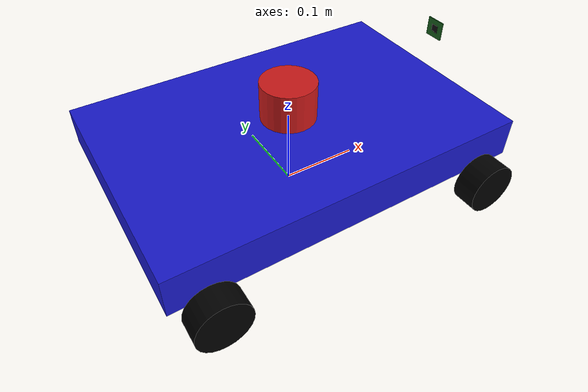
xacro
<?xml version="1.0"?>
<robot xmlns:xacro="http://www.ros.org/wiki/xacro" name="mecanum_robot">

    <!-- chassis properties -->
    <xacro:property name="chassis_length" value="0.45"/>
    <xacro:property name="chassis_width"  value="0.30"/>
    <xacro:property name="chassis_height" value="0.05"/>
    <xacro:property name="chassis_mass"   value="0.5"/>
    <xacro:property name="wheel_radius"   value="0.0325"/>
    <xacro:property name="wheel_thickness" value="0.03"/>
    <xacro:property name="wheel_mass"     value="0.1"/>
    <xacro:property name="ground_clearance" value="0.05"/>

    <xacro:property name="wheel_inset_x" value="0.045"/>
    <xacro:property name="wheel_inset_y" value="0.015"/>

    <xacro:property name="lidar_radius"     value="0.035"/>
    <xacro:property name="lidar_height"     value="0.05"/>
    <xacro:property name="lidar_mass"       value="0.2"/>
    <xacro:property name="lidar_x_offset"   value="0.0"/>

    <!-- Raspberry Pi Camera Module 2 dimensions (metres). -->
    <xacro:property name="camera_width" value="0.025"/>
    <xacro:property name="camera_height" value="0.024"/>
    <xacro:property name="camera_depth" value="0.009"/>
    <xacro:property name="camera_board_depth" value="0.0016"/>
    <xacro:property name="camera_lens_housing_depth" value="0.005"/>
    <xacro:property name="camera_lens_housing_size" value="0.010"/>
    <xacro:property name="camera_lens_radius" value="0.004"/>
    <xacro:property name="camera_lens_depth" value="0.004"/>
    <xacro:property name="camera_mass" value="0.01"/>
    <xacro:property name="camera_update_rate" value="30"/>

    <xacro:property name="wheel_pos_x" value="${(chassis_length / 2.0) - wheel_inset_x}"/>
    <xacro:property name="wheel_pos_y" value="${(chassis_width / 2.0) + wheel_inset_y}"/>
    <xacro:property name="chassis_pos_z" value="${ground_clearance + (chassis_height / 2.0)}"/>
    <xacro:property name="wheel_pos_z"   value="${wheel_radius}"/>

    <xacro:property name="lidar_update_rate"   value="10"/>
    <xacro:property name="lidar_samples"       value="360"/>
    <xacro:property name="lidar_min_angle"     value="-3.14159"/>
    <xacro:property name="lidar_max_angle"     value="3.14159"/>
    <xacro:property name="lidar_min_range"     value="0.15"/>
    <xacro:property name="lidar_max_range"     value="12.0"/>
    <xacro:property name="lidar_noise_stddev"  value="0.01"/>

    <xacro:property name="wheelbase"        value="${wheel_pos_x * 2.0}"/>
    <xacro:property name="wheel_separation" value="${wheel_pos_y * 2.0}"/>

    <!-- Sim Toggle -->
    <xacro:arg name="use_sim" default="false" />

    <xacro:macro name="inertial_box" params="mass x y z">
        <inertial>
            <origin xyz="0 0 0" rpy="0 0 0"/>
            <mass value="${mass}"/>
            <inertia ixx="${(mass/12.0) * (y*y + z*z)}" ixy="0.0" ixz="0.0"
                     iyy="${(mass/12.0) * (x*x + z*z)}" iyz="0.0"
                     izz="${(mass/12.0) * (x*x + y*y)}"/>
        </inertial>
    </xacro:macro>

    <xacro:macro name="inertial_cylinder" params="mass radius length">
        <inertial>
            <origin xyz="0 0 0" rpy="0 0 0"/>
            <mass value="${mass}"/>
            <inertia ixx="${(mass/12.0) * (3*radius*radius + length*length)}" ixy="0.0" ixz="0.0"
                     iyy="${(mass/12.0) * (3*radius*radius + length*length)}" iyz="0.0"
                     izz="${(0.5) * mass * (radius*radius)}"/>
        </inertial>
    </xacro:macro>

    <link name="base_link"/>

    <link name="chassis">
        <visual>
            <geometry>
                <box size="${chassis_length} ${chassis_width} ${chassis_height}"/>
            </geometry>
            <material name="blue"><color rgba="0.1 0.1 0.8 1.0"/></material>
        </visual>
        <collision>
            <geometry>
                <box size="${chassis_length} ${chassis_width} ${chassis_height}"/>
            </geometry>
        </collision>
        <xacro:inertial_box mass="${chassis_mass}" x="${chassis_length}" y="${chassis_width}" z="${chassis_height}"/>
    </link>

    <joint name="chassis_joint" type="fixed">
        <parent link="base_link"/>
        <child link="chassis"/>
        <origin xyz="0 0 ${chassis_pos_z}" rpy="0 0 0"/>
    </joint>

    <xacro:macro name="mecanum_wheel" params="prefix x_reflect y_reflect z_axis_reflect">
        <link name="${prefix}_wheel">
            <visual>
                <origin xyz="0 0 0" rpy="${pi/2} 0 0"/>
                <geometry>
                    <cylinder radius="${wheel_radius}" length="${wheel_thickness}"/>
                </geometry>
                <material name="black"><color rgba="0.0 0.0 0.0 1.0"/></material>
            </visual>
            <collision>
                <origin xyz="0 0 0" rpy="0 0 0"/>
                <geometry>
                    <sphere radius="${wheel_radius}"/>
                </geometry>
            </collision>
            <xacro:inertial_cylinder mass="${wheel_mass}" radius="${wheel_radius}" length="${wheel_thickness}"/>
        </link>

        <joint name="${prefix}_wheel_joint" type="continuous">
            <parent link="base_link"/>
            <child link="${prefix}_wheel"/>
            <origin xyz="${x_reflect * wheel_pos_x} ${y_reflect * wheel_pos_y} ${wheel_pos_z}" rpy="0 0 0"/>
            <axis xyz="0 1 0"/>
        </joint>

        <gazebo reference="${prefix}_wheel">
            <surface>
                <friction>
                    <ode>
                        <mu>0.0</mu>   <mu2>0.0</mu2>
                    </ode>
                </friction>
            </surface>
        </gazebo>
    </xacro:macro>

    <xacro:mecanum_wheel prefix="front_left"  x_reflect="1"  y_reflect="1"  z_axis_reflect="1" />
    <xacro:mecanum_wheel prefix="rear_left"   x_reflect="-1" y_reflect="1"  z_axis_reflect="1" />
    <xacro:mecanum_wheel prefix="front_right" x_reflect="1"  y_reflect="-1" z_axis_reflect="-1" />
    <xacro:mecanum_wheel prefix="rear_right"  x_reflect="-1" y_reflect="-1" z_axis_reflect="-1" />

    <!-- LIDAR -->
    <link name="laser_frame">
        <visual>
            <geometry>
                <cylinder radius="${lidar_radius}" length="${lidar_height}"/>
            </geometry>
            <material name="red"><color rgba="0.8 0.1 0.1 1.0"/></material>
        </visual>
        <collision>
            <geometry>
                <cylinder radius="${lidar_radius}" length="${lidar_height}"/>
            </geometry>
        </collision>
        <xacro:inertial_cylinder mass="${lidar_mass}" radius="${lidar_radius}" length="${lidar_height}"/>
    </link>

    <joint name="laser_joint" type="fixed">
        <parent link="chassis"/>
        <child link="laser_frame"/>
        <origin xyz="${lidar_x_offset} 0 ${(chassis_height/2.0) + (lidar_height/2.0)}" rpy="0 0 0"/>
    </joint>

    <!-- CAMERA: +X points forward on the chassis.  The optical frame follows
         REP 103: +Z forward, +X right, +Y down. -->
    <link name="camera_link">
        <!-- The board is centred on camera_link; +X is the viewing direction. -->
        <visual>
            <origin xyz="${-(camera_depth - camera_board_depth) / 2.0} 0 0" rpy="0 0 0"/>
            <geometry>
                <box size="${camera_board_depth} ${camera_width} ${camera_height}"/>
            </geometry>
            <material name="camera_board_green"><color rgba="0.08 0.35 0.10 1.0"/></material>
        </visual>
        <visual>
            <origin xyz="${(camera_depth - camera_lens_housing_depth) / 2.0 - camera_lens_depth} 0 0" rpy="0 0 0"/>
            <geometry>
                <box size="${camera_lens_housing_depth} ${camera_lens_housing_size} ${camera_lens_housing_size}"/>
            </geometry>
            <material name="camera_lens_housing_black"><color rgba="0.04 0.04 0.04 1.0"/></material>
        </visual>
        <visual>
            <origin xyz="${(camera_depth - camera_lens_depth) / 2.0} 0 0" rpy="0 ${pi / 2.0} 0"/>
            <geometry>
                <cylinder radius="${camera_lens_radius}" length="${camera_lens_depth}"/>
            </geometry>
            <material name="camera_lens_black"><color rgba="0.02 0.02 0.02 1.0"/></material>
        </visual>
        <collision>
            <geometry>
                <box size="${camera_depth} ${camera_width} ${camera_height}"/>
            </geometry>
        </collision>
        <xacro:inertial_box mass="${camera_mass}" x="${camera_depth}" y="${camera_width}" z="${camera_height}"/>
    </link>

    <joint name="camera_joint" type="fixed">
        <parent link="chassis"/>
        <child link="camera_link"/>
        <origin xyz="${(chassis_length / 2.0) + (camera_depth / 2.0)} 0 0.08" rpy="0 0 0"/>
    </joint>

    <link name="camera_optical_frame"/>
    <joint name="camera_optical_joint" type="fixed">
        <parent link="camera_link"/>
        <child link="camera_optical_frame"/>
        <origin xyz="0 0 0" rpy="${-pi/2} 0 ${-pi/2}"/>
    </joint>

    <!-- SENSOR LINKS FOR ROS2_CONTROL -->
    <link name="imu_sensor_1"/>
    <joint name="imu_1_joint" type="fixed">
        <parent link="chassis"/>
        <child link="imu_sensor_1"/>
        <origin xyz="0 0 0" rpy="0 0 0"/>
    </joint>

    <link name="imu_sensor_2"/>
    <joint name="imu_2_joint" type="fixed">
        <parent link="chassis"/>
        <child link="imu_sensor_2"/>
        <origin xyz="0 0 0" rpy="0 0 0"/>
    </joint>

    <link name="ir_sensor_1"/>
    <joint name="ir_1_joint" type="fixed">
        <parent link="chassis"/>
        <child link="ir_sensor_1"/>
        <origin xyz="0.2 0.1 0" rpy="0 0 0"/>
    </joint>

    <link name="ir_sensor_2"/>
    <joint name="ir_2_joint" type="fixed">
        <parent link="chassis"/>
        <child link="ir_sensor_2"/>
        <origin xyz="0.2 -0.1 0" rpy="0 0 0"/>
    </joint>

    <link name="ir_sensor_3"/>
    <joint name="ir_3_joint" type="fixed">
        <parent link="chassis"/>
        <child link="ir_sensor_3"/>
        <origin xyz="-0.2 0.1 0" rpy="0 0 0"/>
    </joint>

    <link name="ir_sensor_4"/>
    <joint name="ir_4_joint" type="fixed">
        <parent link="chassis"/>
        <child link="ir_sensor_4"/>
        <origin xyz="-0.2 -0.1 0" rpy="0 0 0"/>
    </joint>

    <!-- SERVO 1 (Front) -->
    <link name="servo_1_link"/>
    <joint name="servo_1_joint" type="continuous">
        <parent link="chassis"/>
        <child link="servo_1_link"/>
        <origin xyz="0.2 0.0 0.1" rpy="0 0 0"/>
        <axis xyz="0 0 1"/>
    </joint>

    <!-- SERVO 2 (Rear) -->
    <link name="servo_2_link"/>
    <joint name="servo_2_joint" type="continuous">
        <parent link="chassis"/>
        <child link="servo_2_link"/>
        <origin xyz="-0.2 0.0 0.1" rpy="0 0 0"/>
        <axis xyz="0 0 1"/>
    </joint>

    <!-- REAL HARDWARE (Arduino ros2_control: LEFT/RIGHT) -->
    <xacro:unless value="$(arg use_sim)">
        <ros2_control name="ArduinoLeft" type="system">
            <hardware>
                <plugin>arduino_hardware_interface/ArduinoHardwareInterface</plugin>
                <param name="serial_port">/dev/ttyNANO_L</param>
                <param name="baudrate">115200</param>
            </hardware>

            <joint name="rear_left_wheel_joint">
                <command_interface name="velocity"/>
                <state_interface name="position"/>
                <state_interface name="velocity"/>
                <param name="direction_multiplier">1</param>
            </joint>
            <joint name="front_left_wheel_joint">
                <command_interface name="velocity"/>
                <state_interface name="position"/>
                <state_interface name="velocity"/>
                <param name="direction_multiplier">1</param>
            </joint>

            <joint name="servo_1_joint">
                <command_interface name="position"/>
                <state_interface name="position"/>
            </joint>

            <sensor name="imu_sensor_1">
                <state_interface name="orientation.x"/>
                <state_interface name="orientation.y"/>
                <state_interface name="orientation.z"/>
                <state_interface name="orientation.w"/>
                <state_interface name="angular_velocity.x"/>
                <state_interface name="angular_velocity.y"/>
                <state_interface name="angular_velocity.z"/>
                <state_interface name="linear_acceleration.x"/>
                <state_interface name="linear_acceleration.y"/>
                <state_interface name="linear_acceleration.z"/>
            </sensor>
            <sensor name="ir_sensor_1">
                <state_interface name="range"/>
            </sensor>
            <sensor name="ir_sensor_2">
                <state_interface name="range"/>
            </sensor>
        </ros2_control>

        <ros2_control name="ArduinoRight" type="system">
            <hardware>
                <plugin>arduino_hardware_interface/ArduinoHardwareInterface</plugin>
                <param name="serial_port">/dev/ttyAMA2</param>
                <param name="baudrate">115200</param>
            </hardware>

            <joint name="rear_right_wheel_joint">
                <command_interface name="velocity"/>
                <state_interface name="position"/>
                <state_interface name="velocity"/>
                <param name="direction_multiplier">-1</param>
            </joint>
            <joint name="front_right_wheel_joint">
                <command_interface name="velocity"/>
                <state_interface name="position"/>
                <state_interface name="velocity"/>
                <param name="direction_multiplier">-1</param>
            </joint>

            <joint name="servo_2_joint">
                <command_interface name="position"/>
                <state_interface name="position"/>
            </joint>

            <sensor name="imu_sensor_2">
                <state_interface name="orientation.x"/>
                <state_interface name="orientation.y"/>
                <state_interface name="orientation.z"/>
                <state_interface name="orientation.w"/>
                <state_interface name="angular_velocity.x"/>
                <state_interface name="angular_velocity.y"/>
                <state_interface name="angular_velocity.z"/>
                <state_interface name="linear_acceleration.x"/>
                <state_interface name="linear_acceleration.y"/>
                <state_interface name="linear_acceleration.z"/>
            </sensor>
            <sensor name="ir_sensor_3">
                <state_interface name="range"/>
            </sensor>
            <sensor name="ir_sensor_4">
                <state_interface name="range"/>
            </sensor>
        </ros2_control>
    </xacro:unless>

    <!-- SIMULATION (Gazebo Plugins) -->
    <xacro:if value="$(arg use_sim)">
        <gazebo>
            <plugin filename="gz-sim-odometry-publisher-system" name="gz::sim::systems::OdometryPublisher">
                <odom_frame>odom</odom_frame>
                <robot_base_frame>base_link</robot_base_frame>
                <odom_topic>/odom</odom_topic>
                <tf_topic>/tf</tf_topic>
                <odom_publish_frequency>50</odom_publish_frequency>
            </plugin>

            <plugin filename="gz-sim-velocity-control-system" name="gz::sim::systems::VelocityControl">
                <topic>/cmd_vel</topic>
            </plugin>
            <plugin filename="gz-sim-joint-state-publisher-system" name="gz::sim::systems::JointStatePublisher">
                <topic>/joint_states</topic>
                <joint>front_left_wheel_joint</joint>
                <joint>front_right_wheel_joint</joint>
                <joint>rear_left_wheel_joint</joint>
                <joint>rear_right_wheel_joint</joint>
            </plugin>
        </gazebo>

        <gazebo reference="laser_frame">
            <sensor name="gpu_lidar" type="gpu_lidar">
                <pose>0 0 0 0 0 0</pose>
                <always_on>true</always_on>
                <update_rate>${lidar_update_rate}</update_rate>
                <visualize>false</visualize>
                <topic>/scan</topic>
                <gz_frame_id>laser_frame</gz_frame_id>
                <lidar>
                    <scan>
                        <horizontal>
                            <samples>${lidar_samples}</samples>
                            <resolution>1</resolution>
                            <min_angle>${lidar_min_angle}</min_angle>
                            <max_angle>${lidar_max_angle}</max_angle>
                        </horizontal>
                    </scan>
                    <range>
                        <min>${lidar_min_range}</min>
                        <max>${lidar_max_range}</max>
                        <resolution>0.01</resolution>
                    </range>
                    <noise>
                        <type>gaussian</type>
                        <mean>0.0</mean>
                        <stddev>${lidar_noise_stddev}</stddev>
                    </noise>
                </lidar>
            </sensor>
        </gazebo>

        <!-- Gazebo camera rays use the camera-link convention (+X forward).
             Messages are labelled with the ROS optical frame. -->
        <gazebo reference="camera_link">
            <sensor name="front_camera" type="camera">
                <pose>0 0 0 0 0 0</pose>
                <always_on>true</always_on>
                <update_rate>${camera_update_rate}</update_rate>
                <visualize>false</visualize>
                <topic>/camera/image_raw</topic>
                <gz_frame_id>camera_optical_frame</gz_frame_id>
                <camera>
                    <horizontal_fov>1.0856</horizontal_fov>
                    <image>
                        <width>640</width>
                        <height>480</height>
                        <format>R8G8B8</format>
                    </image>
                    <clip>
                        <near>0.05</near>
                        <far>20.0</far>
                    </clip>
                    <camera_info_topic>/camera/camera_info</camera_info_topic>
                </camera>
            </sensor>
        </gazebo>
    </xacro:if>

</robot>
